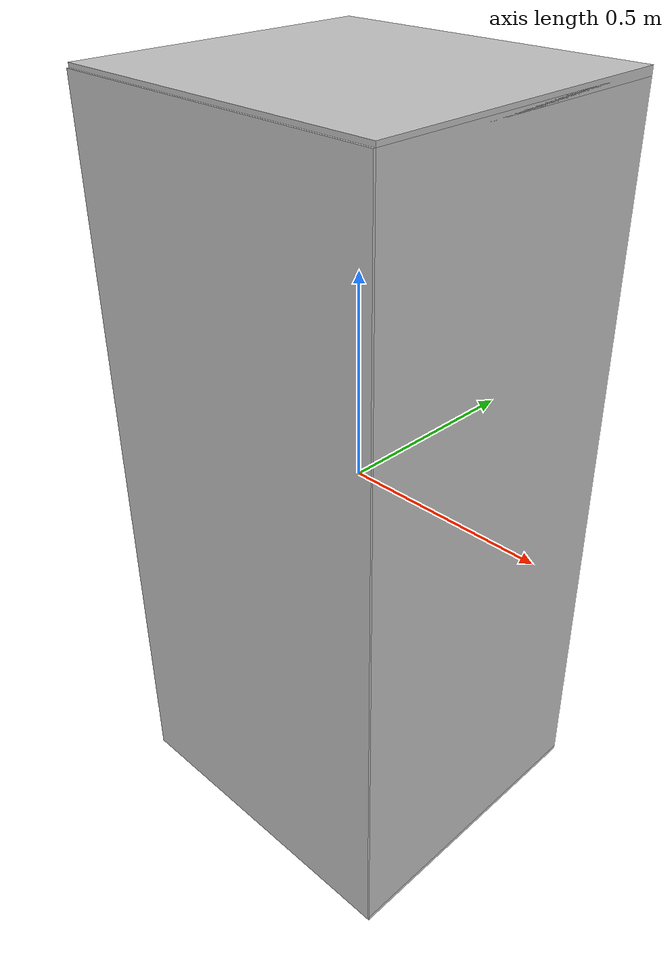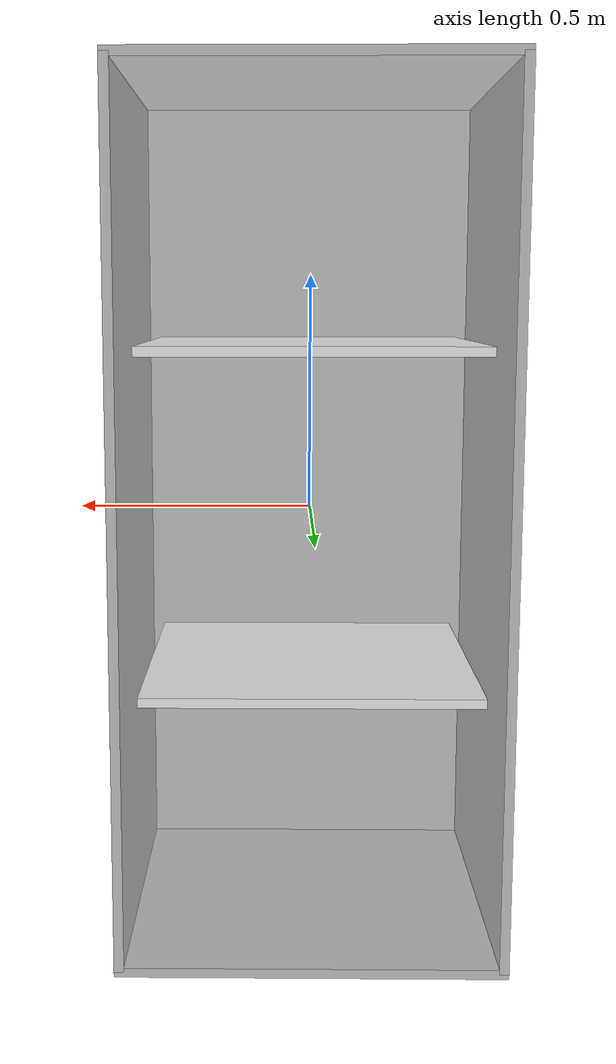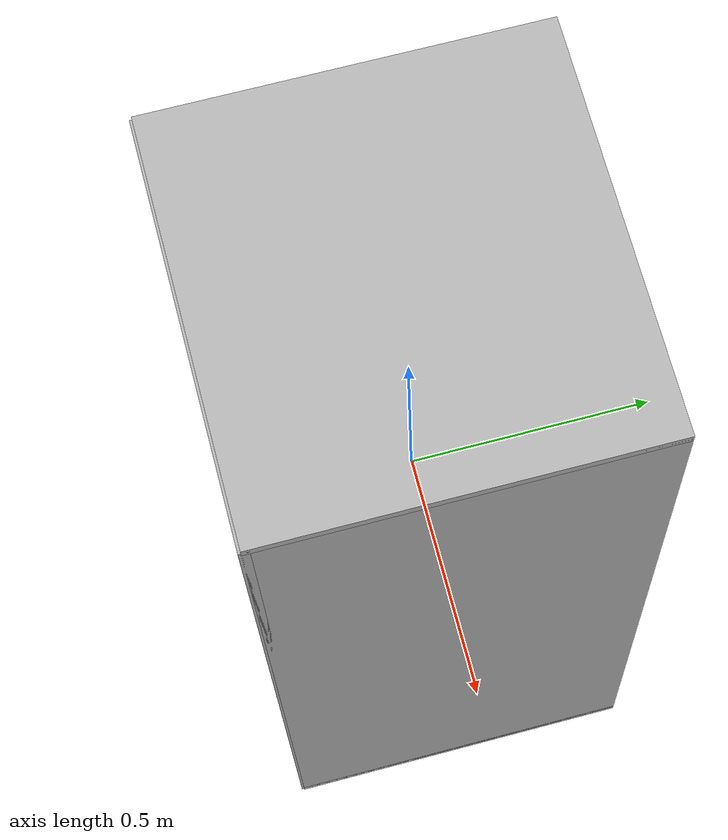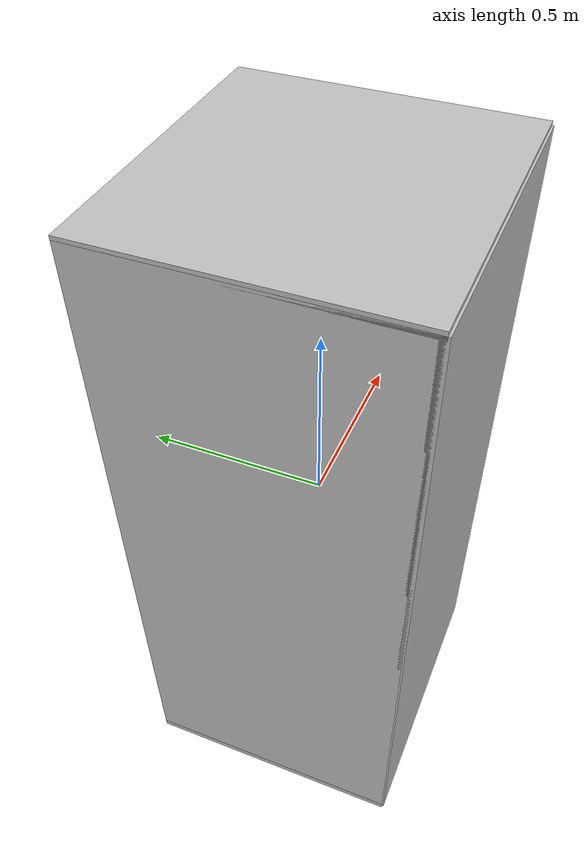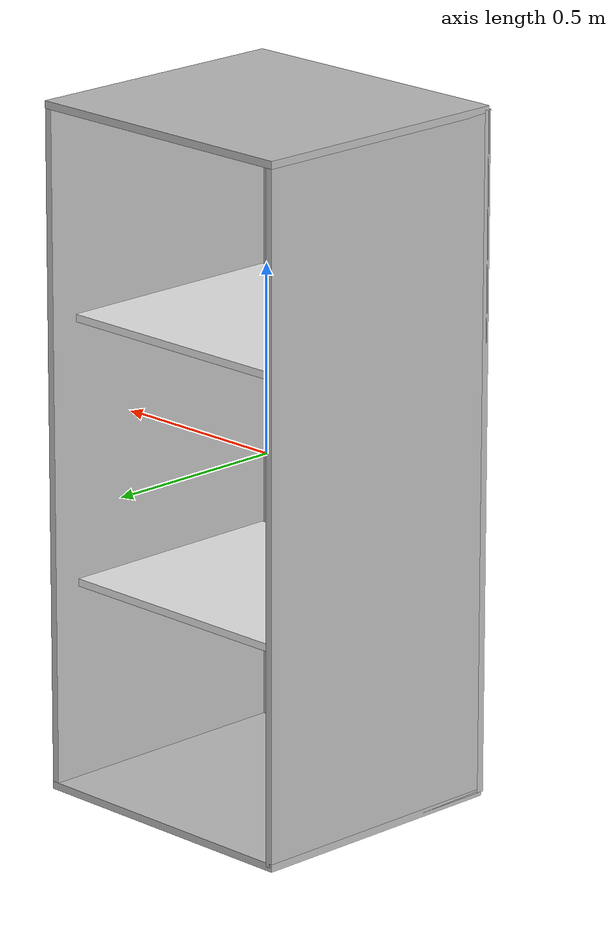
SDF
<?xml version="1.0" ?>
<sdf version="1.8">
  <model name="shelve">
    <static>true</static>

    <link name="shelve_link">

      <!-- BACK WALL -->
      <visual name="back_wall_visual">
        <pose>0 -0.37 0 0 0 0</pose>
        <geometry>
          <box><size>0.8 0.02 1.8</size></box>
        </geometry>
        <material>
          <ambient>0.75 0.75 0.75 1</ambient>
          <diffuse>0.75 0.75 0.75 1</diffuse>
        </material>
      </visual>

      <!-- LEFT WALL -->
      <visual name="left_wall_visual">
        <pose>-0.39 0 0 0 0 0</pose>
        <geometry>
          <box><size>0.02 0.75 1.8</size></box>
        </geometry>
        <material>
          <ambient>0.75 0.75 0.75 1</ambient>
          <diffuse>0.75 0.75 0.75 1</diffuse>
        </material>
      </visual>

      <!-- RIGHT WALL -->
      <visual name="right_wall_visual">
        <pose>0.39 0 0 0 0 0</pose>
        <geometry>
          <box><size>0.02 0.75 1.8</size></box>
        </geometry>
        <material>
          <ambient>0.75 0.75 0.75 1</ambient>
          <diffuse>0.75 0.75 0.75 1</diffuse>
        </material>
      </visual>

      <!-- TOP CEILING -->
      <visual name="top_visual">
        <pose>0 0 0.9 0 0 0</pose>
        <geometry>
          <box><size>0.8 0.75 0.02</size></box>
        </geometry>
        <material>
          <ambient>0.75 0.75 0.75 1</ambient>
          <diffuse>0.75 0.75 0.75 1</diffuse>
        </material>
      </visual>

      <!-- FLOOR -->
      <visual name="floor_visual">
        <pose>0 0 -0.9 0 0 0</pose>
        <geometry>
          <box><size>0.8 0.75 0.02</size></box>
        </geometry>
        <material>
          <ambient>0.75 0.75 0.75 1</ambient>
          <diffuse>0.75 0.75 0.75 1</diffuse>
        </material>
      </visual>

      <!-- SHELF 1 (lighter grey) -->
      <collision name="shelf1_collision">
        <pose>0 0 0.35 0 0 0</pose>
        <geometry>
          <box><size>0.7 0.65 0.02</size></box>
        </geometry>
        <surface>
          <friction>
            <ode>
              <mu>0.4</mu>
              <mu2>0.4</mu2>
            </ode>
          </friction>
        </surface>
      </collision>

      <visual name="shelf1_visual">
        <pose>0 0 0.35 0 0 0</pose>
        <geometry>
          <box><size>0.7 0.65 0.02</size></box>
        </geometry>
        <material>
          <ambient>0.92 0.92 0.92 1</ambient>
          <diffuse>0.92 0.92 0.92 1</diffuse>
        </material>
      </visual>

      <!-- SHELF 2 (lighter grey) -->
      <collision name="shelf2_collision">
        <pose>0 0 -0.35 0 0 0</pose>
        <geometry>
          <box><size>0.7 0.65 0.02</size></box>
        </geometry>
        <surface>
          <friction>
            <ode>
              <mu>0.4</mu>
              <mu2>0.4</mu2>
            </ode>
          </friction>
        </surface>
      </collision>

      <visual name="shelf2_visual">
        <pose>0 0 -0.35 0 0 0</pose>
        <geometry>
          <box><size>0.7 0.65 0.02</size></box>
        </geometry>
        <material>
          <ambient>0.92 0.92 0.92 1</ambient>
          <diffuse>0.92 0.92 0.92 1</diffuse>
        </material>
      </visual>

    </link>
  </model>
</sdf>
